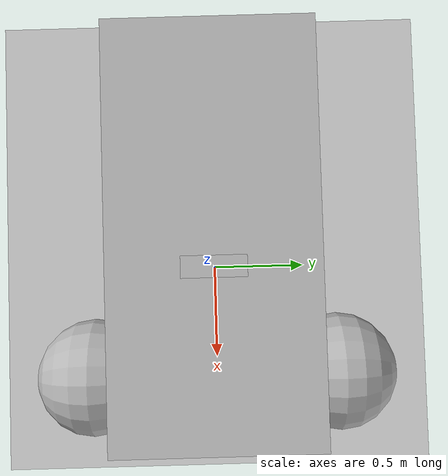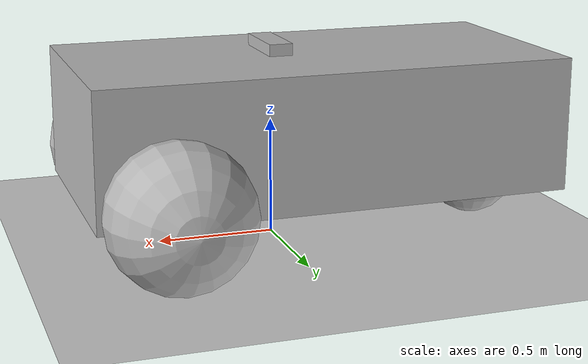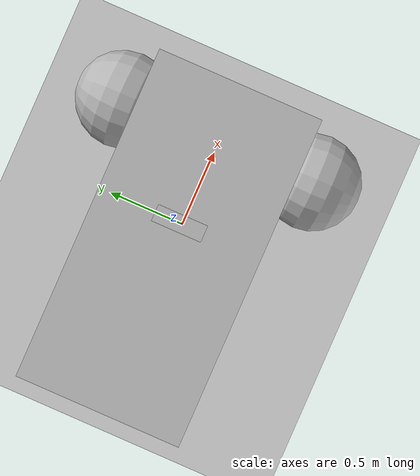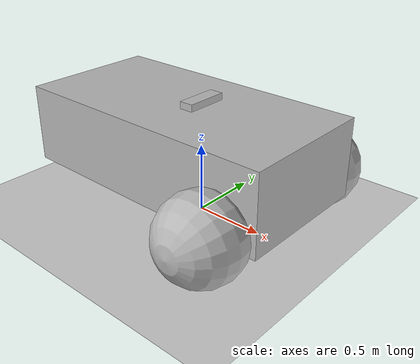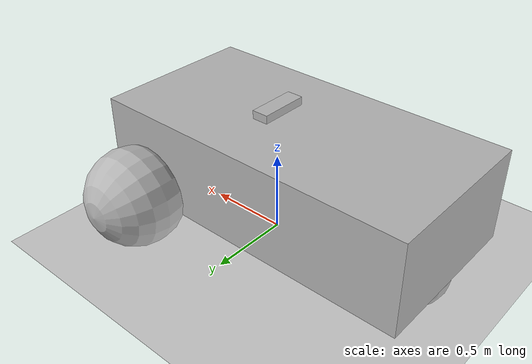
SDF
<?xml version="1.0"?>
<sdf version="1.6">
  <world name="default">

    <include>
      <uri>model://ground_plane</uri>
    </include>

    <include>
      <uri>model://sun</uri>
    </include>

    <model name='vehicle'>
      <pose>0 0 0.325 0 -0 0</pose>

      <link name='chassis'>
        <pose>-0.151427 -0 0.175 0 -0 0</pose>
        <inertial>
          <mass>1.14395</mass>
          <inertia>
            <ixx>0.126164</ixx>
            <ixy>0</ixy>
            <ixz>0</ixz>
            <iyy>0.416519</iyy>
            <iyz>0</iyz>
            <izz>0.481014</izz>
          </inertia>
        </inertial>
        <visual name='visual'>
          <geometry>
            <box>
              <size>2.01142 1 0.568726</size>
            </box>
          </geometry>
        </visual>
        <collision name='collision'>
          <geometry>
            <box>
              <size>2.01142 1 0.568726</size>
            </box>
          </geometry>
        </collision>
      </link>

      <link name='left_wheel'>
        <pose>0.554283 0.625029 -0.025 -1.5707 0 0</pose>
        <inertial>
          <mass>2</mass>
          <inertia>
            <ixx>0.145833</ixx>
            <ixy>0</ixy>
            <ixz>0</ixz>
            <iyy>0.145833</iyy>
            <iyz>0</iyz>
            <izz>0.125</izz>
          </inertia>
        </inertial>
        <visual name='visual'>
          <geometry>
            <sphere>
              <radius>0.3</radius>
            </sphere>
          </geometry>
        </visual>
        <collision name='collision'>
          <geometry>
            <sphere>
              <radius>0.3</radius>
            </sphere>
          </geometry>
          <surface>
            <friction>
              <ode>
                <mu>1</mu>
                <mu2>1</mu2>
                <slip1>0</slip1>
                <slip2>0</slip2>
              </ode>
            </friction>
            <contact>
              <ode>
                <soft_cfm>0</soft_cfm>
                <soft_erp>0.2</soft_erp>
                <kp>1e+13</kp>
                <kd>1</kd>
                <max_vel>0.01</max_vel>
                <min_depth>0.01</min_depth>
              </ode>
            </contact>
          </surface>
        </collision>
      </link>

      <link name='right_wheel'>
        <pose>0.554282 -0.625029 -0.025 -1.5707 0 0</pose>
        <inertial>
          <mass>2</mass>
          <inertia>
            <ixx>0.145833</ixx>
            <ixy>0</ixy>
            <ixz>0</ixz>
            <iyy>0.145833</iyy>
            <iyz>0</iyz>
            <izz>0.125</izz>
          </inertia>
        </inertial>
        <visual name='visual'>
          <geometry>
            <sphere>
              <radius>0.3</radius>
            </sphere>
          </geometry>
        </visual>
        <collision name='collision'>
          <geometry>
            <sphere>
              <radius>0.3</radius>
            </sphere>
          </geometry>
          <surface>
            <friction>
              <ode>
                <mu>1</mu>
                <mu2>1</mu2>
                <slip1>0</slip1>
                <slip2>0</slip2>
              </ode>
            </friction>
            <contact>
              <ode>
                <soft_cfm>0</soft_cfm>
                <soft_erp>0.2</soft_erp>
                <kp>1e+13</kp>
                <kd>1</kd>
                <max_vel>0.01</max_vel>
                <min_depth>0.01</min_depth>
              </ode>
            </contact>
          </surface>
        </collision>
      </link>

      <link name='caster'>
        <pose>-0.957138 -0 -0.125 0 -0 0</pose>
        <inertial>
          <mass>1</mass>
          <inertia>
            <ixx>0.1</ixx>
            <ixy>0</ixy>
            <ixz>0</ixz>
            <iyy>0.1</iyy>
            <iyz>0</iyz>
            <izz>0.1</izz>
          </inertia>
        </inertial>
        <visual name='visual'>
          <geometry>
            <sphere>
              <radius>0.2</radius>
            </sphere>
          </geometry>
        </visual>
        <collision name='collision'>
          <geometry>
            <sphere>
              <radius>0.2</radius>
            </sphere>
          </geometry>
        </collision>
      </link>

      <link name="camera_link">
        <pose>0 0 0.5 0 0 0</pose>
        <visual name='visual'>
          <geometry>
            <box>
              <size>0.1 0.3 0.05</size>
            </box>
          </geometry>
        </visual>
        <sensor type="depth" name="camera1">
          <update_rate>60</update_rate>
          <visualize>false</visualize>
          <camera>
            <horizontal_fov>1.92</horizontal_fov>
            <image>
              <width>640</width>
              <height>480</height>
              <format>B8G8R8</format>
            </image>
            <depth_camera>
            </depth_camera>
            <clip>
              <near>0.02</near>
              <far>300</far>
            </clip>
            <noise>
              <type>gaussian</type>
              <mean>0.0</mean>
              <stddev>0.007</stddev>
            </noise>
          </camera>
          <plugin name="camera_controller" filename="libgazebo_ros_camera.so">
            <ros>
              <namespace>demo_cam</namespace>

              <!-- topics need to be prefixed with camera_name for remapping -->
              <remapping>mycamera/image_raw:=mycamera/image_demo</remapping>
              <remapping>mycamera/depth/image_raw:=mycamera/depth_demo</remapping>
              <remapping>mycamera/camera_info:=mycamera/raw_cam_info_demo</remapping>
              <remapping>mycamera/depth/camera_info:=mycamera/depth_cam_info_demo</remapping>
              <remapping>mycamera/points:=mycamera/points_demo</remapping>
            </ros>

            <!-- omit camera_name to default to sensor name -->
            <camera_name>mycamera</camera_name>

            <min_depth>0.1</min_depth>
            <max_depth>500</max_depth>
          </plugin>
        </sensor>
      </link>

      <joint name='left_wheel_joint' type='revolute'>
        <parent>chassis</parent>
        <child>left_wheel</child>
        <axis>
          <xyz>0 0 1</xyz>
          <limit>
            <lower>-1.79769e+308</lower>
            <upper>1.79769e+308</upper>
          </limit>
        </axis>
      </joint>

      <joint name='right_wheel_joint' type='revolute'>
        <parent>chassis</parent>
        <child>right_wheel</child>
        <axis>
          <xyz>0 0 1</xyz>
          <limit>
            <lower>-1.79769e+308</lower>
            <upper>1.79769e+308</upper>
          </limit>
        </axis>
      </joint>

      <joint name='caster_wheel' type='ball'>
        <parent>chassis</parent>
        <child>caster</child>
      </joint>

      <joint name='camera_joint' type='fixed'>
        <parent>chassis</parent>
        <child>camera_link</child>
      </joint>

      <plugin name='diff_drive' filename='libgazebo_ros_diff_drive.so'>

        <ros>
          <namespace>/sim</namespace>
        </ros>

        <!-- wheels -->
        <left_joint>left_wheel_joint</left_joint>
        <right_joint>right_wheel_joint</right_joint>

        <!-- kinematics -->
        <wheel_separation>1.25</wheel_separation>
        <wheel_diameter>0.6</wheel_diameter>

        <!-- limits -->
        <max_wheel_torque>20</max_wheel_torque>
        <max_wheel_acceleration>1.0</max_wheel_acceleration>

        <!-- output -->
        <publish_odom>true</publish_odom>
        <publish_odom_tf>true</publish_odom_tf>
        <publish_wheel_tf>true</publish_wheel_tf>

        <odometry_frame>odom_demo</odometry_frame>
        <robot_base_frame>chassis</robot_base_frame>

      </plugin>

    </model>

  </world>
</sdf>
